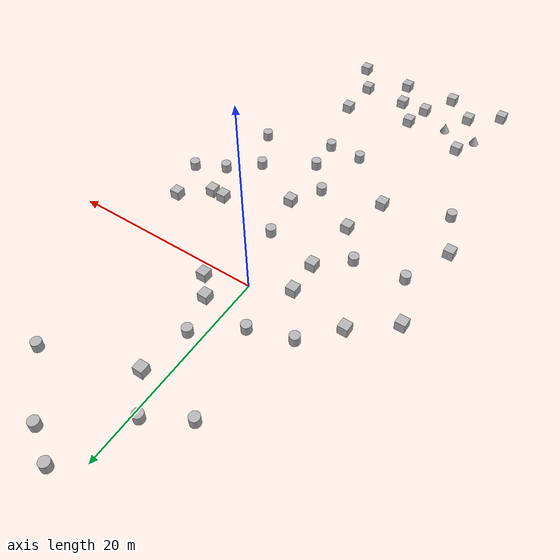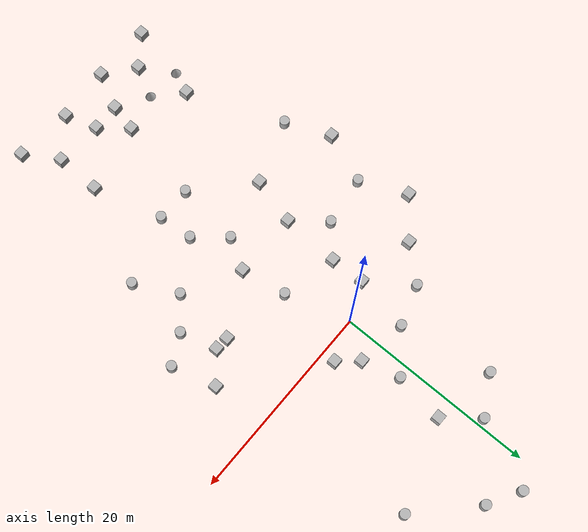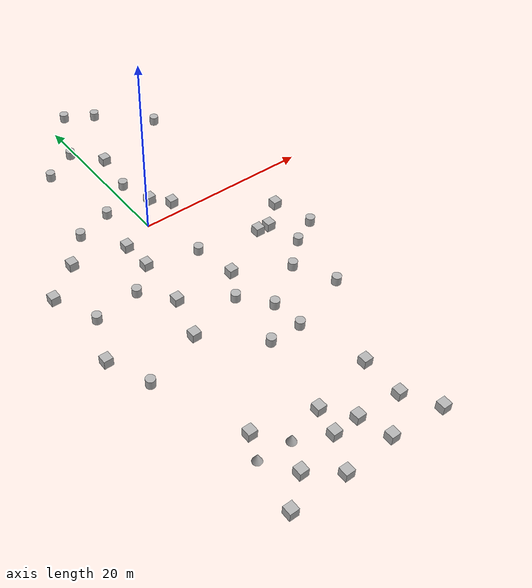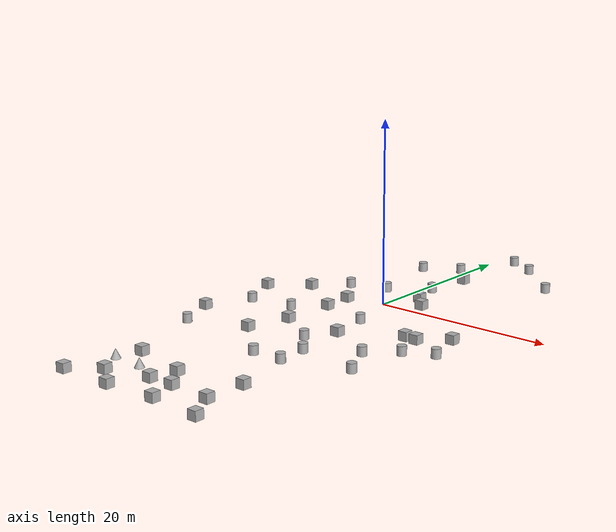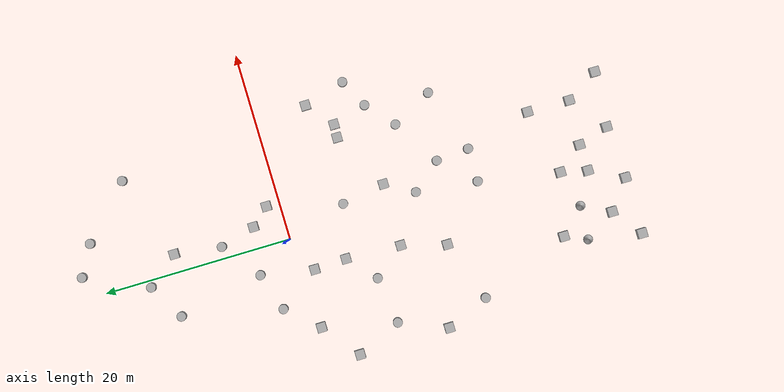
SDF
<sdf version="1.10">
 <world name="warehouse">
  <physics type="ode">
   <max_step_size>0.0030000000000000001</max_step_size>
   <real_time_factor>1</real_time_factor>
   <real_time_update_rate>1000</real_time_update_rate>
   <gravity>0 0 -9.8</gravity>
  </physics>
  <plugin name="gz::sim::systems::Physics" filename="libgz-sim-physics-system.so"/>
  <plugin name="gz::sim::systems::UserCommands" filename="libgz-sim-user-commands-system.so"/>
  <plugin name="gz::sim::systems::SceneBroadcaster" filename="libgz-sim-scene-broadcaster-system.so"/>
  <scene>
   <ambient>1 1 1 1</ambient>
   <background>0.300000012 0.699999988 0.899999976 1</background>
   <shadows>false</shadows>
   <grid>false</grid>
  </scene>
  <spherical_coordinates>
   <surface_model>EARTH_WGS84</surface_model>
   <world_frame_orientation>ENU</world_frame_orientation>
   <latitude_deg>-22.986687</latitude_deg>
   <longitude_deg>-43.202500999999998</longitude_deg>
   <elevation>0</elevation>
   <heading_deg>0</heading_deg>
  </spherical_coordinates>
  <gravity>0 0 -9.8000000000000007</gravity>
  <magnetic_field>5.5644999999999998e-06 2.2875799999999999e-05 -4.2388400000000002e-05</magnetic_field>
  <atmosphere type="adiabatic"/>
  <model name="ground_plane">
   <static>true</static>
   <link name="link">
    <collision name="collision">
     <geometry><plane><normal>0 0 1</normal><size>1 1</size></plane></geometry>
    </collision>
    <inertial>
     <mass>1</mass>
     <inertia><ixx>1</ixx><ixy>0</ixy><ixz>0</ixz><iyy>1</iyy><iyz>0</iyz><izz>1</izz></inertia>
    </inertial>
   </link>
  </model>
  <model name="box">
   <pose>2.3430943580382575 3.2816854598629068 0.49999999911798237 1.5363336224756932e-20 -1.2574342005325274e-20 1.3847431932731033e-21</pose>
   <link name="box_link">
    <inertial>
     <inertia><ixx>0.16666</ixx><ixy>0</ixy><ixz>0</ixz><iyy>0.16666</iyy><iyz>0</iyz><izz>0.16666</izz></inertia>
     <mass>1</mass>
    </inertial>
    <collision name="box_collision"><geometry><box><size>1 1 1</size></box></geometry></collision>
    <visual name="box_visual">
     <geometry><box><size>1 1 1</size></box></geometry>
     <material>
      <ambient>0.300000012 0.300000012 0.300000012 1</ambient>
      <diffuse>0.699999988 0.699999988 0.699999988 1</diffuse>
      <specular>1 1 1 1</specular>
     </material>
    </visual>
   </link>
   <static>false</static>
  </model>
  <model name="box_0">
   <pose>4.0118598937988281 1.3872389793395996 0.49999999911798237 3.3652359670472887e-20 -4.8138225374557266e-20 3.8050730697114273e-21</pose>
   <link name="box_link">
    <inertial>
     <inertia><ixx>0.16666</ixx><ixy>0</ixy><ixz>0</ixz><iyy>0.16666</iyy><iyz>0</iyz><izz>0.16666</izz></inertia>
     <mass>1</mass>
    </inertial>
    <collision name="box_collision"><geometry><box><size>1 1 1</size></box></geometry></collision>
    <visual name="box_visual">
     <geometry><box><size>1 1 1</size></box></geometry>
     <material>
      <ambient>0.300000012 0.300000012 0.300000012 1</ambient>
      <diffuse>0.699999988 0.699999988 0.699999988 1</diffuse>
      <specular>1 1 1 1</specular>
     </material>
    </visual>
   </link>
   <static>false</static>
  </model>
  <model name="box_1">
   <pose>-3.711899995803833 -1.5780833959579468 0.49999999911798237 1.8104511403663283e-20 -5.737647386745368e-20 -3.3325984697457734e-21</pose>
   <link name="box_link">
    <inertial>
     <inertia><ixx>0.16666</ixx><ixy>0</ixy><ixz>0</ixz><iyy>0.16666</iyy><iyz>0</iyz><izz>0.16666</izz></inertia>
     <mass>1</mass>
    </inertial>
    <collision name="box_collision"><geometry><box><size>1 1 1</size></box></geometry></collision>
    <visual name="box_visual">
     <geometry><box><size>1 1 1</size></box></geometry>
     <material>
      <ambient>0.300000012 0.300000012 0.300000012 1</ambient>
      <diffuse>0.699999988 0.699999988 0.699999988 1</diffuse>
      <specular>1 1 1 1</specular>
     </material>
    </visual>
   </link>
   <static>false</static>
  </model>
  <model name="cylinder">
   <pose>-2.6779431692146689 4.0088310957134858 0.49999957929137095 4.639213992121355e-18 6.6681793581926108e-18 -7.9754132692826942e-20</pose>
   <link name="cylinder_link">
    <inertial>
     <inertia>
      <ixx>0.14580000000000001</ixx>
      <ixy>0</ixy>
      <ixz>0</ixz>
      <iyy>0.14580000000000001</iyy>
      <iyz>0</iyz>
      <izz>0.125</izz>
     </inertia>
     <mass>1</mass>
    </inertial>
    <collision name="cylinder_collision">
     <geometry><cylinder><radius>0.5</radius><length>1</length></cylinder></geometry>
    </collision>
    <visual name="cylinder_visual">
     <geometry><cylinder><radius>0.5</radius><length>1</length></cylinder></geometry>
     <material>
      <ambient>0.300000012 0.300000012 0.300000012 1</ambient>
      <diffuse>0.699999988 0.699999988 0.699999988 1</diffuse>
      <specular>1 1 1 1</specular>
     </material>
    </visual>
   </link>
   <static>false</static>
  </model>
  <model name="cylinder_0">
   <pose>1.2923844386365673 7.0169729133462386 0.49999957929137095 2.3095690910754773e-18 5.9629538649381313e-18 3.0287092119770442e-19</pose>
   <link name="cylinder_link">
    <inertial>
     <inertia>
      <ixx>0.14580000000000001</ixx>
      <ixy>0</ixy>
      <ixz>0</ixz>
      <iyy>0.14580000000000001</iyy>
      <iyz>0</iyz>
      <izz>0.125</izz>
     </inertia>
     <mass>1</mass>
    </inertial>
    <collision name="cylinder_collision">
     <geometry><cylinder><radius>0.5</radius><length>1</length></cylinder></geometry>
    </collision>
    <visual name="cylinder_visual">
     <geometry><cylinder><radius>0.5</radius><length>1</length></cylinder></geometry>
     <material>
      <ambient>0.300000012 0.300000012 0.300000012 1</ambient>
      <diffuse>0.699999988 0.699999988 0.699999988 1</diffuse>
      <specular>1 1 1 1</specular>
     </material>
    </visual>
   </link>
   <static>false</static>
  </model>
  <model name="box_3">
   <pose>-3.5693172796663548 -5.007057410873454 0.49999999911798237 1.5363336224756932e-20 -1.2574342005325274e-20 1.3847431932731033e-21</pose>
   <link name="box_link">
    <inertial>
     <inertia><ixx>0.16666</ixx><ixy>0</ixy><ixz>0</ixz><iyy>0.16666</iyy><iyz>0</iyz><izz>0.16666</izz></inertia>
     <mass>1</mass>
    </inertial>
    <collision name="box_collision"><geometry><box><size>1 1 1</size></box></geometry></collision>
    <visual name="box_visual">
     <geometry><box><size>1 1 1</size></box></geometry>
     <material>
      <ambient>0.300000012 0.300000012 0.300000012 1</ambient>
      <diffuse>0.699999988 0.699999988 0.699999988 1</diffuse>
      <specular>1 1 1 1</specular>
     </material>
    </visual>
   </link>
   <static>false</static>
  </model>
  <model name="box_2">
   <pose>12.922972679138184 -5.4979400634765625 0.49999999911798237 3.2992390848228071e-20 -4.8880562375257448e-20 4.1343814366759123e-21</pose>
   <link name="box_link">
    <inertial>
     <inertia><ixx>0.16666</ixx><ixy>0</ixy><ixz>0</ixz><iyy>0.16666</iyy><iyz>0</iyz><izz>0.16666</izz></inertia>
     <mass>1</mass>
    </inertial>
    <collision name="box_collision"><geometry><box><size>1 1 1</size></box></geometry></collision>
    <visual name="box_visual">
     <geometry><box><size>1 1 1</size></box></geometry>
     <material>
      <ambient>0.300000012 0.300000012 0.300000012 1</ambient>
      <diffuse>0.699999988 0.699999988 0.699999988 1</diffuse>
      <specular>1 1 1 1</specular>
     </material>
    </visual>
   </link>
   <static>false</static>
  </model>
  <model name="box_4">
   <pose>10.184483733446108 -7.7893425360040336 0.49999999911798237 1.5363336224756932e-20 -1.2574342005325274e-20 1.3847431932731033e-21</pose>
   <link name="box_link">
    <inertial>
     <inertia><ixx>0.16666</ixx><ixy>0</ixy><ixz>0</ixz><iyy>0.16666</iyy><iyz>0</iyz><izz>0.16666</izz></inertia>
     <mass>1</mass>
    </inertial>
    <collision name="box_collision"><geometry><box><size>1 1 1</size></box></geometry></collision>
    <visual name="box_visual">
     <geometry><box><size>1 1 1</size></box></geometry>
     <material>
      <ambient>0.300000012 0.300000012 0.300000012 1</ambient>
      <diffuse>0.699999988 0.699999988 0.699999988 1</diffuse>
      <specular>1 1 1 1</specular>
     </material>
    </visual>
   </link>
   <static>false</static>
  </model>
  <model name="box_5">
   <pose>8.7903529321629463 -7.7065495120498611 0.49999999911798237 1.5363336224756932e-20 -1.2574342005325274e-20 1.3847431932731033e-21</pose>
   <link name="box_link">
    <inertial>
     <inertia><ixx>0.16666</ixx><ixy>0</ixy><ixz>0</ixz><iyy>0.16666</iyy><iyz>0</iyz><izz>0.16666</izz></inertia>
     <mass>1</mass>
    </inertial>
    <collision name="box_collision"><geometry><box><size>1 1 1</size></box></geometry></collision>
    <visual name="box_visual">
     <geometry><box><size>1 1 1</size></box></geometry>
     <material>
      <ambient>0.300000012 0.300000012 0.300000012 1</ambient>
      <diffuse>0.699999988 0.699999988 0.699999988 1</diffuse>
      <specular>1 1 1 1</specular>
     </material>
    </visual>
   </link>
   <static>false</static>
  </model>
  <model name="cylinder_1">
   <pose>11.203709744321237 -11.397504562263105 0.49999957929137095 1.0636605664631307e-17 -6.1423362375997655e-19 -5.5555853916895788e-19</pose>
   <link name="cylinder_link">
    <inertial>
     <inertia>
      <ixx>0.14580000000000001</ixx>
      <ixy>0</ixy>
      <ixz>0</ixz>
      <iyy>0.14580000000000001</iyy>
      <iyz>0</iyz>
      <izz>0.125</izz>
     </inertia>
     <mass>1</mass>
    </inertial>
    <collision name="cylinder_collision">
     <geometry><cylinder><radius>0.5</radius><length>1</length></cylinder></geometry>
    </collision>
    <visual name="cylinder_visual">
     <geometry><cylinder><radius>0.5</radius><length>1</length></cylinder></geometry>
     <material>
      <ambient>0.300000012 0.300000012 0.300000012 1</ambient>
      <diffuse>0.699999988 0.699999988 0.699999988 1</diffuse>
      <specular>1 1 1 1</specular>
     </material>
    </visual>
   </link>
   <static>false</static>
  </model>
  <model name="cylinder_2">
   <pose>8.3674726486206055 -13.91569995880127 0.49999909000104409 1.0031397206352473e-17 -9.2080600127782299e-18 -3.2950133555069379e-19</pose>
   <link name="cylinder_link">
    <inertial>
     <inertia>
      <ixx>0.14580000000000001</ixx>
      <ixy>0</ixy>
      <ixz>0</ixz>
      <iyy>0.14580000000000001</iyy>
      <iyz>0</iyz>
      <izz>0.125</izz>
     </inertia>
     <mass>1</mass>
    </inertial>
    <collision name="cylinder_collision">
     <geometry><cylinder><radius>0.5</radius><length>1</length></cylinder></geometry>
    </collision>
    <visual name="cylinder_visual">
     <geometry><cylinder><radius>0.5</radius><length>1</length></cylinder></geometry>
     <material>
      <ambient>0.300000012 0.300000012 0.300000012 1</ambient>
      <diffuse>0.699999988 0.699999988 0.699999988 1</diffuse>
      <specular>1 1 1 1</specular>
     </material>
    </visual>
   </link>
   <static>false</static>
  </model>
  <model name="cylinder_3">
   <pose>14.162644390188577 -9.8741179710396167 0.49999957929137095 8.5031142334726339e-18 -8.435511252606414e-18 3.5219309653246312e-20</pose>
   <link name="cylinder_link">
    <inertial>
     <inertia>
      <ixx>0.14580000000000001</ixx>
      <ixy>0</ixy>
      <ixz>0</ixz>
      <iyy>0.14580000000000001</iyy>
      <iyz>0</iyz>
      <izz>0.125</izz>
     </inertia>
     <mass>1</mass>
    </inertial>
    <collision name="cylinder_collision">
     <geometry><cylinder><radius>0.5</radius><length>1</length></cylinder></geometry>
    </collision>
    <visual name="cylinder_visual">
     <geometry><cylinder><radius>0.5</radius><length>1</length></cylinder></geometry>
     <material>
      <ambient>0.300000012 0.300000012 0.300000012 1</ambient>
      <diffuse>0.699999988 0.699999988 0.699999988 1</diffuse>
      <specular>1 1 1 1</specular>
     </material>
    </visual>
   </link>
   <static>false</static>
  </model>
  <model name="cylinder_4">
   <pose>10.556797027587891 -18.117399215698242 0.49999957925398764 2.8299332966698225e-18 8.3617305618024624e-19 -4.0140029812810816e-19</pose>
   <link name="cylinder_link">
    <inertial>
     <inertia>
      <ixx>0.14580000000000001</ixx>
      <ixy>0</ixy>
      <ixz>0</ixz>
      <iyy>0.14580000000000001</iyy>
      <iyz>0</iyz>
      <izz>0.125</izz>
     </inertia>
     <mass>1</mass>
    </inertial>
    <collision name="cylinder_collision">
     <geometry><cylinder><radius>0.5</radius><length>1</length></cylinder></geometry>
    </collision>
    <visual name="cylinder_visual">
     <geometry><cylinder><radius>0.5</radius><length>1</length></cylinder></geometry>
     <material>
      <ambient>0.300000012 0.300000012 0.300000012 1</ambient>
      <diffuse>0.699999988 0.699999988 0.699999988 1</diffuse>
      <specular>1 1 1 1</specular>
     </material>
    </visual>
   </link>
   <static>false</static>
  </model>
  <model name="cylinder_5">
   <pose>3.7873936505521701 -20.44728236863147 0.49999957929137095 6.5197012924053597e-19 -1.2833197655771773e-18 -1.1950079849506876e-19</pose>
   <link name="cylinder_link">
    <inertial>
     <inertia>
      <ixx>0.14580000000000001</ixx>
      <ixy>0</ixy>
      <ixz>0</ixz>
      <iyy>0.14580000000000001</iyy>
      <iyz>0</iyz>
      <izz>0.125</izz>
     </inertia>
     <mass>1</mass>
    </inertial>
    <collision name="cylinder_collision">
     <geometry><cylinder><radius>0.5</radius><length>1</length></cylinder></geometry>
    </collision>
    <visual name="cylinder_visual">
     <geometry><cylinder><radius>0.5</radius><length>1</length></cylinder></geometry>
     <material>
      <ambient>0.300000012 0.300000012 0.300000012 1</ambient>
      <diffuse>0.699999988 0.699999988 0.699999988 1</diffuse>
      <specular>1 1 1 1</specular>
     </material>
    </visual>
   </link>
   <static>false</static>
  </model>
  <model name="cylinder_6">
   <pose>0.25169467926025391 -20.43950080871582 0.49999957934481337 3.7721528596649834e-18 -9.0600724615924961e-19 -4.4572341338900481e-20</pose>
   <link name="cylinder_link">
    <inertial>
     <inertia>
      <ixx>0.14580000000000001</ixx>
      <ixy>0</ixy>
      <ixz>0</ixz>
      <iyy>0.14580000000000001</iyy>
      <iyz>0</iyz>
      <izz>0.125</izz>
     </inertia>
     <mass>1</mass>
    </inertial>
    <collision name="cylinder_collision">
     <geometry><cylinder><radius>0.5</radius><length>1</length></cylinder></geometry>
    </collision>
    <visual name="cylinder_visual">
     <geometry><cylinder><radius>0.5</radius><length>1</length></cylinder></geometry>
     <material>
      <ambient>0.300000012 0.300000012 0.300000012 1</ambient>
      <diffuse>0.699999988 0.699999988 0.699999988 1</diffuse>
      <specular>1 1 1 1</specular>
     </material>
    </visual>
   </link>
   <static>false</static>
  </model>
  <model name="cylinder_7">
   <pose>3.5238813744986919 -16.967492644607791 0.49999957929137095 2.5779694792096685e-19 -1.0383957496848795e-18 -3.5980866167722519e-19</pose>
   <link name="cylinder_link">
    <inertial>
     <inertia>
      <ixx>0.14580000000000001</ixx>
      <ixy>0</ixy>
      <ixz>0</ixz>
      <iyy>0.14580000000000001</iyy>
      <iyz>0</iyz>
      <izz>0.125</izz>
     </inertia>
     <mass>1</mass>
    </inertial>
    <collision name="cylinder_collision">
     <geometry><cylinder><radius>0.5</radius><length>1</length></cylinder></geometry>
    </collision>
    <visual name="cylinder_visual">
     <geometry><cylinder><radius>0.5</radius><length>1</length></cylinder></geometry>
     <material>
      <ambient>0.300000012 0.300000012 0.300000012 1</ambient>
      <diffuse>0.699999988 0.699999988 0.699999988 1</diffuse>
      <specular>1 1 1 1</specular>
     </material>
    </visual>
   </link>
   <static>false</static>
  </model>
  <model name="cylinder_8">
   <pose>1.0048054686356214 -13.962910955742062 0.49999957929137095 1.0401566352469103e-18 -5.7044833694820492e-20 1.1053135198276469e-19</pose>
   <link name="cylinder_link">
    <inertial>
     <inertia>
      <ixx>0.14580000000000001</ixx>
      <ixy>0</ixy>
      <ixz>0</ixz>
      <iyy>0.14580000000000001</iyy>
      <iyz>0</iyz>
      <izz>0.125</izz>
     </inertia>
     <mass>1</mass>
    </inertial>
    <collision name="cylinder_collision">
     <geometry><cylinder><radius>0.5</radius><length>1</length></cylinder></geometry>
    </collision>
    <visual name="cylinder_visual">
     <geometry><cylinder><radius>0.5</radius><length>1</length></cylinder></geometry>
     <material>
      <ambient>0.300000012 0.300000012 0.300000012 1</ambient>
      <diffuse>0.699999988 0.699999988 0.699999988 1</diffuse>
      <specular>1 1 1 1</specular>
     </material>
    </visual>
   </link>
   <static>false</static>
  </model>
  <model name="box_6">
   <pose>2.7755762304589147 -10.949361368845773 0.49999999911798237 1.5363336224756932e-20 -1.2574342005325274e-20 1.3847431932731033e-21</pose>
   <link name="box_link">
    <inertial>
     <inertia><ixx>0.16666</ixx><ixy>0</ixy><ixz>0</ixz><iyy>0.16666</iyy><iyz>0</iyz><izz>0.16666</izz></inertia>
     <mass>1</mass>
    </inertial>
    <collision name="box_collision"><geometry><box><size>1 1 1</size></box></geometry></collision>
    <visual name="box_visual">
     <geometry><box><size>1 1 1</size></box></geometry>
     <material>
      <ambient>0.300000012 0.300000012 0.300000012 1</ambient>
      <diffuse>0.699999988 0.699999988 0.699999988 1</diffuse>
      <specular>1 1 1 1</specular>
     </material>
    </visual>
   </link>
   <static>false</static>
  </model>
  <model name="cylinder_9">
   <pose>1.9937499761581421 -6.3621978759765625 0.49999957934481343 -4.7244585679345603e-18 -7.8128889422301954e-18 -4.3195410221290847e-19</pose>
   <link name="cylinder_link">
    <inertial>
     <inertia>
      <ixx>0.14580000000000001</ixx>
      <ixy>0</ixy>
      <ixz>0</ixz>
      <iyy>0.14580000000000001</iyy>
      <iyz>0</iyz>
      <izz>0.125</izz>
     </inertia>
     <mass>1</mass>
    </inertial>
    <collision name="cylinder_collision">
     <geometry><cylinder><radius>0.5</radius><length>1</length></cylinder></geometry>
    </collision>
    <visual name="cylinder_visual">
     <geometry><cylinder><radius>0.5</radius><length>1</length></cylinder></geometry>
     <material>
      <ambient>0.300000012 0.300000012 0.300000012 1</ambient>
      <diffuse>0.699999988 0.699999988 0.699999988 1</diffuse>
      <specular>1 1 1 1</specular>
     </material>
    </visual>
   </link>
   <static>false</static>
  </model>
  <model name="cylinder_10">
   <pose>-6.4471833049463694 -7.6030230901531031 0.49999957929137095 2.1283540053473405e-19 -3.3198964776249952e-18 2.2479422151615722e-20</pose>
   <link name="cylinder_link">
    <inertial>
     <inertia>
      <ixx>0.14580000000000001</ixx>
      <ixy>0</ixy>
      <ixz>0</ixz>
      <iyy>0.14580000000000001</iyy>
      <iyz>0</iyz>
      <izz>0.125</izz>
     </inertia>
     <mass>1</mass>
    </inertial>
    <collision name="cylinder_collision">
     <geometry><cylinder><radius>0.5</radius><length>1</length></cylinder></geometry>
    </collision>
    <visual name="cylinder_visual">
     <geometry><cylinder><radius>0.5</radius><length>1</length></cylinder></geometry>
     <material>
      <ambient>0.300000012 0.300000012 0.300000012 1</ambient>
      <diffuse>0.699999988 0.699999988 0.699999988 1</diffuse>
      <specular>1 1 1 1</specular>
     </material>
    </visual>
   </link>
   <static>false</static>
  </model>
  <model name="box_7">
   <pose>-3.8570670755560328 -10.869147665733788 0.49999999911798237 -1.0980224856337924e-20 2.1748165303813592e-22 1.7251284132199079e-22</pose>
   <link name="box_link">
    <inertial>
     <inertia><ixx>0.16666</ixx><ixy>0</ixy><ixz>0</ixz><iyy>0.16666</iyy><iyz>0</iyz><izz>0.16666</izz></inertia>
     <mass>1</mass>
    </inertial>
    <collision name="box_collision"><geometry><box><size>1 1 1</size></box></geometry></collision>
    <visual name="box_visual">
     <geometry><box><size>1 1 1</size></box></geometry>
     <material>
      <ambient>0.300000012 0.300000012 0.300000012 1</ambient>
      <diffuse>0.699999988 0.699999988 0.699999988 1</diffuse>
      <specular>1 1 1 1</specular>
     </material>
    </visual>
   </link>
   <static>false</static>
  </model>
  <model name="box_8">
   <pose>-5.1481046314067225 -15.552220772618924 0.49999999911798237 1.5363336224756932e-20 -1.2574342005325274e-20 1.3847431932731033e-21</pose>
   <link name="box_link">
    <inertial>
     <inertia><ixx>0.16666</ixx><ixy>0</ixy><ixz>0</ixz><iyy>0.16666</iyy><iyz>0</iyz><izz>0.16666</izz></inertia>
     <mass>1</mass>
    </inertial>
    <collision name="box_collision"><geometry><box><size>1 1 1</size></box></geometry></collision>
    <visual name="box_visual">
     <geometry><box><size>1 1 1</size></box></geometry>
     <material>
      <ambient>0.300000012 0.300000012 0.300000012 1</ambient>
      <diffuse>0.699999988 0.699999988 0.699999988 1</diffuse>
      <specular>1 1 1 1</specular>
     </material>
    </visual>
   </link>
   <static>false</static>
  </model>
  <model name="cylinder_11">
   <pose>-6.739698151614955 2.7000016948423875 0.49999957929137095 7.9317700129655026e-18 5.721621312167527e-20 -5.3379271163265455e-20</pose>
   <link name="cylinder_link">
    <inertial>
     <inertia>
      <ixx>0.14580000000000001</ixx>
      <ixy>0</ixy>
      <ixz>0</ixz>
      <iyy>0.14580000000000001</iyy>
      <iyz>0</iyz>
      <izz>0.125</izz>
     </inertia>
     <mass>1</mass>
    </inertial>
    <collision name="cylinder_collision">
     <geometry><cylinder><radius>0.5</radius><length>1</length></cylinder></geometry>
    </collision>
    <visual name="cylinder_visual">
     <geometry><cylinder><radius>0.5</radius><length>1</length></cylinder></geometry>
     <material>
      <ambient>0.300000012 0.300000012 0.300000012 1</ambient>
      <diffuse>0.699999988 0.699999988 0.699999988 1</diffuse>
      <specular>1 1 1 1</specular>
     </material>
    </visual>
   </link>
   <static>false</static>
  </model>
  <model name="box_9">
   <pose>-9.6907555252467041 -0.55260158296205475 0.49999999911798237 1.5363336224756932e-20 -1.2574342005325274e-20 1.3847431932731033e-21</pose>
   <link name="box_link">
    <inertial>
     <inertia><ixx>0.16666</ixx><ixy>0</ixy><ixz>0</ixz><iyy>0.16666</iyy><iyz>0</iyz><izz>0.16666</izz></inertia>
     <mass>1</mass>
    </inertial>
    <collision name="box_collision"><geometry><box><size>1 1 1</size></box></geometry></collision>
    <visual name="box_visual">
     <geometry><box><size>1 1 1</size></box></geometry>
     <material>
      <ambient>0.300000012 0.300000012 0.300000012 1</ambient>
      <diffuse>0.699999988 0.699999988 0.699999988 1</diffuse>
      <specular>1 1 1 1</specular>
     </material>
    </visual>
   </link>
   <static>false</static>
  </model>
  <model name="box_10">
   <pose>-13.54045561337292 -3.6078104528985389 0.49999999911798237 1.5363336224756932e-20 -1.2574342005325274e-20 1.3847431932731033e-21</pose>
   <link name="box_link">
    <inertial>
     <inertia><ixx>0.16666</ixx><ixy>0</ixy><ixz>0</ixz><iyy>0.16666</iyy><iyz>0</iyz><izz>0.16666</izz></inertia>
     <mass>1</mass>
    </inertial>
    <collision name="box_collision"><geometry><box><size>1 1 1</size></box></geometry></collision>
    <visual name="box_visual">
     <geometry><box><size>1 1 1</size></box></geometry>
     <material>
      <ambient>0.300000012 0.300000012 0.300000012 1</ambient>
      <diffuse>0.699999988 0.699999988 0.699999988 1</diffuse>
      <specular>1 1 1 1</specular>
     </material>
    </visual>
   </link>
   <static>false</static>
  </model>
  <model name="cylinder_12">
   <pose>-11.456757781017123 -8.2931624878447785 0.49999957929137095 7.9085133867854203e-18 -1.7842048193314204e-18 -1.3111832447756987e-19</pose>
   <link name="cylinder_link">
    <inertial>
     <inertia>
      <ixx>0.14580000000000001</ixx>
      <ixy>0</ixy>
      <ixz>0</ixz>
      <iyy>0.14580000000000001</iyy>
      <iyz>0</iyz>
      <izz>0.125</izz>
     </inertia>
     <mass>1</mass>
    </inertial>
    <collision name="cylinder_collision">
     <geometry><cylinder><radius>0.5</radius><length>1</length></cylinder></geometry>
    </collision>
    <visual name="cylinder_visual">
     <geometry><cylinder><radius>0.5</radius><length>1</length></cylinder></geometry>
     <material>
      <ambient>0.300000012 0.300000012 0.300000012 1</ambient>
      <diffuse>0.699999988 0.699999988 0.699999988 1</diffuse>
      <specular>1 1 1 1</specular>
     </material>
    </visual>
   </link>
   <static>false</static>
  </model>
  <model name="box_11">
   <pose>-13.513806367024433 -13.294190188615367 0.49999999911798237 1.5363336224756932e-20 -1.2574342005325274e-20 1.3847431932731033e-21</pose>
   <link name="box_link">
    <inertial>
     <inertia><ixx>0.16666</ixx><ixy>0</ixy><ixz>0</ixz><iyy>0.16666</iyy><iyz>0</iyz><izz>0.16666</izz></inertia>
     <mass>1</mass>
    </inertial>
    <collision name="box_collision"><geometry><box><size>1 1 1</size></box></geometry></collision>
    <visual name="box_visual">
     <geometry><box><size>1 1 1</size></box></geometry>
     <material>
      <ambient>0.300000012 0.300000012 0.300000012 1</ambient>
      <diffuse>0.699999988 0.699999988 0.699999988 1</diffuse>
      <specular>1 1 1 1</specular>
     </material>
    </visual>
   </link>
   <static>false</static>
  </model>
  <model name="cylinder_13">
   <pose>-11.613910638293154 -17.789755743618969 0.49999957929137095 5.9806606780660016e-18 -6.8363885637223461e-18 1.2031268374869904e-19</pose>
   <link name="cylinder_link">
    <inertial>
     <inertia>
      <ixx>0.14580000000000001</ixx>
      <ixy>0</ixy>
      <ixz>0</ixz>
      <iyy>0.14580000000000001</iyy>
      <iyz>0</iyz>
      <izz>0.125</izz>
     </inertia>
     <mass>1</mass>
    </inertial>
    <collision name="cylinder_collision">
     <geometry><cylinder><radius>0.5</radius><length>1</length></cylinder></geometry>
    </collision>
    <visual name="cylinder_visual">
     <geometry><cylinder><radius>0.5</radius><length>1</length></cylinder></geometry>
     <material>
      <ambient>0.300000012 0.300000012 0.300000012 1</ambient>
      <diffuse>0.699999988 0.699999988 0.699999988 1</diffuse>
      <specular>1 1 1 1</specular>
     </material>
    </visual>
   </link>
   <static>false</static>
  </model>
  <model name="cylinder_14">
   <pose>-4.4573593935435953 13.083063097821324 0.49999957929137095 4.0171563826564197e-18 2.7984471044865961e-19 -2.4554144045806898e-19</pose>
   <link name="cylinder_link">
    <inertial>
     <inertia>
      <ixx>0.14580000000000001</ixx>
      <ixy>0</ixy>
      <ixz>0</ixz>
      <iyy>0.14580000000000001</iyy>
      <iyz>0</iyz>
      <izz>0.125</izz>
     </inertia>
     <mass>1</mass>
    </inertial>
    <collision name="cylinder_collision">
     <geometry><cylinder><radius>0.5</radius><length>1</length></cylinder></geometry>
    </collision>
    <visual name="cylinder_visual">
     <geometry><cylinder><radius>0.5</radius><length>1</length></cylinder></geometry>
     <material>
      <ambient>0.300000012 0.300000012 0.300000012 1</ambient>
      <diffuse>0.699999988 0.699999988 0.699999988 1</diffuse>
      <specular>1 1 1 1</specular>
     </material>
    </visual>
   </link>
   <static>false</static>
  </model>
  <model name="cylinder_15">
   <pose>-0.66585390110383891 15.246648763871109 0.49999957929137095 -1.2064282626259962e-18 -6.4438073083142753e-19 -3.827923480347417e-19</pose>
   <link name="cylinder_link">
    <inertial>
     <inertia>
      <ixx>0.14580000000000001</ixx>
      <ixy>0</ixy>
      <ixz>0</ixz>
      <iyy>0.14580000000000001</iyy>
      <iyz>0</iyz>
      <izz>0.125</izz>
     </inertia>
     <mass>1</mass>
    </inertial>
    <collision name="cylinder_collision">
     <geometry><cylinder><radius>0.5</radius><length>1</length></cylinder></geometry>
    </collision>
    <visual name="cylinder_visual">
     <geometry><cylinder><radius>0.5</radius><length>1</length></cylinder></geometry>
     <material>
      <ambient>0.300000012 0.300000012 0.300000012 1</ambient>
      <diffuse>0.699999988 0.699999988 0.699999988 1</diffuse>
      <specular>1 1 1 1</specular>
     </material>
    </visual>
   </link>
   <static>false</static>
  </model>
  <model name="box_12">
   <pose>1.9730249066505507 11.997904178662202 0.49999999911798237 1.5363336224756932e-20 -1.2574342005325274e-20 1.3847431932731033e-21</pose>
   <link name="box_link">
    <inertial>
     <inertia><ixx>0.16666</ixx><ixy>0</ixy><ixz>0</ixz><iyy>0.16666</iyy><iyz>0</iyz><izz>0.16666</izz></inertia>
     <mass>1</mass>
    </inertial>
    <collision name="box_collision"><geometry><box><size>1 1 1</size></box></geometry></collision>
    <visual name="box_visual">
     <geometry><box><size>1 1 1</size></box></geometry>
     <material>
      <ambient>0.300000012 0.300000012 0.300000012 1</ambient>
      <diffuse>0.699999988 0.699999988 0.699999988 1</diffuse>
      <specular>1 1 1 1</specular>
     </material>
    </visual>
   </link>
   <static>false</static>
  </model>
  <model name="cylinder_16">
   <pose>10.81443852645944 15.015866654789528 0.49999957929137095 -2.2761825979789857e-18 -7.6962848694094659e-18 1.921799675715097e-19</pose>
   <link name="cylinder_link">
    <inertial>
     <inertia>
      <ixx>0.14580000000000001</ixx>
      <ixy>0</ixy>
      <ixz>0</ixz>
      <iyy>0.14580000000000001</iyy>
      <iyz>0</iyz>
      <izz>0.125</izz>
     </inertia>
     <mass>1</mass>
    </inertial>
    <collision name="cylinder_collision">
     <geometry><cylinder><radius>0.5</radius><length>1</length></cylinder></geometry>
    </collision>
    <visual name="cylinder_visual">
     <geometry><cylinder><radius>0.5</radius><length>1</length></cylinder></geometry>
     <material>
      <ambient>0.300000012 0.300000012 0.300000012 1</ambient>
      <diffuse>0.699999988 0.699999988 0.699999988 1</diffuse>
      <specular>1 1 1 1</specular>
     </material>
    </visual>
   </link>
   <static>false</static>
  </model>
  <model name="cylinder_17">
   <pose>2.3525381142037434 21.864650819664284 0.49999957929137095 2.8023108311434132e-18 -2.9878044815851096e-18 -7.9882407727126324e-20</pose>
   <link name="cylinder_link">
    <inertial>
     <inertia>
      <ixx>0.14580000000000001</ixx>
      <ixy>0</ixy>
      <ixz>0</ixz>
      <iyy>0.14580000000000001</iyy>
      <iyz>0</iyz>
      <izz>0.125</izz>
     </inertia>
     <mass>1</mass>
    </inertial>
    <collision name="cylinder_collision">
     <geometry><cylinder><radius>0.5</radius><length>1</length></cylinder></geometry>
    </collision>
    <visual name="cylinder_visual">
     <geometry><cylinder><radius>0.5</radius><length>1</length></cylinder></geometry>
     <material>
      <ambient>0.300000012 0.300000012 0.300000012 1</ambient>
      <diffuse>0.699999988 0.699999988 0.699999988 1</diffuse>
      <specular>1 1 1 1</specular>
     </material>
    </visual>
   </link>
   <static>false</static>
  </model>
  <model name="cylinder_18">
   <pose>5.5024626350600441 20.060745169925163 0.49999957929137095 -2.8395764367497688e-18 2.8437578749108246e-18 -1.2080007351147293e-19</pose>
   <link name="cylinder_link">
    <inertial>
     <inertia>
      <ixx>0.14580000000000001</ixx>
      <ixy>0</ixy>
      <ixz>0</ixz>
      <iyy>0.14580000000000001</iyy>
      <iyz>0</iyz>
      <izz>0.125</izz>
     </inertia>
     <mass>1</mass>
    </inertial>
    <collision name="cylinder_collision">
     <geometry><cylinder><radius>0.5</radius><length>1</length></cylinder></geometry>
    </collision>
    <visual name="cylinder_visual">
     <geometry><cylinder><radius>0.5</radius><length>1</length></cylinder></geometry>
     <material>
      <ambient>0.300000012 0.300000012 0.300000012 1</ambient>
      <diffuse>0.699999988 0.699999988 0.699999988 1</diffuse>
      <specular>1 1 1 1</specular>
     </material>
    </visual>
   </link>
   <static>false</static>
  </model>
  <model name="cone">
   <pose>-8.856959566864381 -29.815003785585194 0.49999999939670808 4.7289568180715475e-16 -6.9419556930292995e-09 -7.7552055977926626e-22</pose>
   <link name="cone_link">
    <inertial>
     <inertia>
      <ixx>0.074999999999999997</ixx>
      <ixy>0</ixy>
      <ixz>0</ixz>
      <iyy>0.074999999999999997</iyy>
      <iyz>0</iyz>
      <izz>0.074999999999999997</izz>
     </inertia>
     <mass>1</mass>
    </inertial>
    <collision name="cone_collision">
     <geometry><cone><radius>0.5</radius><length>1</length></cone></geometry>
    </collision>
    <visual name="cone_visual">
     <geometry><cone><radius>0.5</radius><length>1</length></cone></geometry>
     <material>
      <ambient>0.300000012 0.300000012 0.300000012 1</ambient>
      <diffuse>0.699999988 0.699999988 0.699999988 1</diffuse>
      <specular>1 1 1 1</specular>
     </material>
    </visual>
   </link>
   <static>false</static>
  </model>
  <model name="cone_0">
   <pose>-5.266229488909393 -30.042032110188188 0.49999999939670808 4.7291392089557467e-16 -6.9419556933527263e-09 2.1959034082109056e-21</pose>
   <link name="cone_link">
    <inertial>
     <inertia>
      <ixx>0.074999999999999997</ixx>
      <ixy>0</ixy>
      <ixz>0</ixz>
      <iyy>0.074999999999999997</iyy>
      <iyz>0</iyz>
      <izz>0.074999999999999997</izz>
     </inertia>
     <mass>1</mass>
    </inertial>
    <collision name="cone_collision">
     <geometry><cone><radius>0.5</radius><length>1</length></cone></geometry>
    </collision>
    <visual name="cone_visual">
     <geometry><cone><radius>0.5</radius><length>1</length></cone></geometry>
     <material>
      <ambient>0.300000012 0.300000012 0.300000012 1</ambient>
      <diffuse>0.699999988 0.699999988 0.699999988 1</diffuse>
      <specular>1 1 1 1</specular>
     </material>
    </visual>
   </link>
   <static>false</static>
  </model>
  <model name="box_13">
   <pose>-1.9350299835205078 -31.756099700927734 0.49999999911798237 -3.1631782544314869e-21 1.3372085216368342e-20 1.2249772193994394e-21</pose>
   <link name="box_link">
    <inertial>
     <inertia><ixx>0.16666</ixx><ixy>0</ixy><ixz>0</ixz><iyy>0.16666</iyy><iyz>0</iyz><izz>0.16666</izz></inertia>
     <mass>1</mass>
    </inertial>
    <collision name="box_collision"><geometry><box><size>1 1 1</size></box></geometry></collision>
    <visual name="box_visual">
     <geometry><box><size>1 1 1</size></box></geometry>
     <material>
      <ambient>0.300000012 0.300000012 0.300000012 1</ambient>
      <diffuse>0.699999988 0.699999988 0.699999988 1</diffuse>
      <specular>1 1 1 1</specular>
     </material>
    </visual>
   </link>
   <static>false</static>
  </model>
  <model name="box_13_1">
   <pose>0.88031133611853885 -31.690382283006169 0.49999999911798237 -1.6581065191409589e-22 7.1461172919364365e-22 -2.0351093472491801e-21</pose>
   <link name="box_link">
    <inertial>
     <inertia><ixx>0.16666</ixx><ixy>0</ixy><ixz>0</ixz><iyy>0.16666</iyy><iyz>0</iyz><izz>0.16666</izz></inertia>
     <mass>1</mass>
    </inertial>
    <collision name="box_collision"><geometry><box><size>1 1 1</size></box></geometry></collision>
    <visual name="box_visual">
     <geometry><box><size>1 1 1</size></box></geometry>
     <material>
      <ambient>0.300000012 0.300000012 0.300000012 1</ambient>
      <diffuse>0.699999988 0.699999988 0.699999988 1</diffuse>
      <specular>1 1 1 1</specular>
     </material>
    </visual>
   </link>
   <static>false</static>
  </model>
  <model name="box_13_2">
   <pose>1.870583752170117 -34.915991420429606 0.49999999911798237 -7.3559150091563619e-21 -1.9513643597994602e-21 -1.1975529658612574e-21</pose>
   <link name="box_link">
    <inertial>
     <inertia><ixx>0.16666</ixx><ixy>0</ixy><ixz>0</ixz><iyy>0.16666</iyy><iyz>0</iyz><izz>0.16666</izz></inertia>
     <mass>1</mass>
    </inertial>
    <collision name="box_collision"><geometry><box><size>1 1 1</size></box></geometry></collision>
    <visual name="box_visual">
     <geometry><box><size>1 1 1</size></box></geometry>
     <material>
      <ambient>0.300000012 0.300000012 0.300000012 1</ambient>
      <diffuse>0.699999988 0.699999988 0.699999988 1</diffuse>
      <specular>1 1 1 1</specular>
     </material>
    </visual>
   </link>
   <static>false</static>
  </model>
  <model name="box_13_3">
   <pose>-3.7483022719777148 -35.305870854751547 0.49999999911798237 -1.7278716035434344e-20 5.0385699129407965e-21 1.9473605852369452e-21</pose>
   <link name="box_link">
    <inertial>
     <inertia><ixx>0.16666</ixx><ixy>0</ixy><ixz>0</ixz><iyy>0.16666</iyy><iyz>0</iyz><izz>0.16666</izz></inertia>
     <mass>1</mass>
    </inertial>
    <collision name="box_collision"><geometry><box><size>1 1 1</size></box></geometry></collision>
    <visual name="box_visual">
     <geometry><box><size>1 1 1</size></box></geometry>
     <material>
      <ambient>0.300000012 0.300000012 0.300000012 1</ambient>
      <diffuse>0.699999988 0.699999988 0.699999988 1</diffuse>
      <specular>1 1 1 1</specular>
     </material>
    </visual>
   </link>
   <static>false</static>
  </model>
  <model name="box_13_4">
   <pose>5.6275138311862989 -31.976212916613044 0.49999999911798237 -1.7278716035434344e-20 5.0385699129407965e-21 1.9473605852369452e-21</pose>
   <link name="box_link">
    <inertial>
     <inertia><ixx>0.16666</ixx><ixy>0</ixy><ixz>0</ixz><iyy>0.16666</iyy><iyz>0</iyz><izz>0.16666</izz></inertia>
     <mass>1</mass>
    </inertial>
    <collision name="box_collision"><geometry><box><size>1 1 1</size></box></geometry></collision>
    <visual name="box_visual">
     <geometry><box><size>1 1 1</size></box></geometry>
     <material>
      <ambient>0.300000012 0.300000012 0.300000012 1</ambient>
      <diffuse>0.699999988 0.699999988 0.699999988 1</diffuse>
      <specular>1 1 1 1</specular>
     </material>
    </visual>
   </link>
   <static>false</static>
  </model>
  <model name="box_13_5">
   <pose>7.7110847023544036 -35.360226629783767 0.49999999911798237 -1.7278716035434344e-20 5.0385699129407965e-21 1.9473605852369452e-21</pose>
   <link name="box_link">
    <inertial>
     <inertia><ixx>0.16666</ixx><ixy>0</ixy><ixz>0</ixz><iyy>0.16666</iyy><iyz>0</iyz><izz>0.16666</izz></inertia>
     <mass>1</mass>
    </inertial>
    <collision name="box_collision"><geometry><box><size>1 1 1</size></box></geometry></collision>
    <visual name="box_visual">
     <geometry><box><size>1 1 1</size></box></geometry>
     <material>
      <ambient>0.300000012 0.300000012 0.300000012 1</ambient>
      <diffuse>0.699999988 0.699999988 0.699999988 1</diffuse>
      <specular>1 1 1 1</specular>
     </material>
    </visual>
   </link>
   <static>false</static>
  </model>
  <model name="box_13_6">
   <pose>5.6992966883182552 -27.466038431474331 0.49999999911798237 -1.7278716035434344e-20 5.0385699129407965e-21 1.9473605852369452e-21</pose>
   <link name="box_link">
    <inertial>
     <inertia><ixx>0.16666</ixx><ixy>0</ixy><ixz>0</ixz><iyy>0.16666</iyy><iyz>0</iyz><izz>0.16666</izz></inertia>
     <mass>1</mass>
    </inertial>
    <collision name="box_collision"><geometry><box><size>1 1 1</size></box></geometry></collision>
    <visual name="box_visual">
     <geometry><box><size>1 1 1</size></box></geometry>
     <material>
      <ambient>0.300000012 0.300000012 0.300000012 1</ambient>
      <diffuse>0.699999988 0.699999988 0.699999988 1</diffuse>
      <specular>1 1 1 1</specular>
     </material>
    </visual>
   </link>
   <static>false</static>
  </model>
  <model name="box_13_7">
   <pose>-1.2913312282601754 -28.967835173471983 0.49999999911798237 -1.7278716035434344e-20 5.0385699129407965e-21 1.9473605852369452e-21</pose>
   <link name="box_link">
    <inertial>
     <inertia><ixx>0.16666</ixx><ixy>0</ixy><ixz>0</ixz><iyy>0.16666</iyy><iyz>0</iyz><izz>0.16666</izz></inertia>
     <mass>1</mass>
    </inertial>
    <collision name="box_collision"><geometry><box><size>1 1 1</size></box></geometry></collision>
    <visual name="box_visual">
     <geometry><box><size>1 1 1</size></box></geometry>
     <material>
      <ambient>0.300000012 0.300000012 0.300000012 1</ambient>
      <diffuse>0.699999988 0.699999988 0.699999988 1</diffuse>
      <specular>1 1 1 1</specular>
     </material>
    </visual>
   </link>
   <static>false</static>
  </model>
  <model name="box_13_8">
   <pose>-7.7980098684967185 -27.416572988954005 0.49999999911798237 -1.7278716035434344e-20 5.0385699129407965e-21 1.9473605852369452e-21</pose>
   <link name="box_link">
    <inertial>
     <inertia><ixx>0.16666</ixx><ixy>0</ixy><ixz>0</ixz><iyy>0.16666</iyy><iyz>0</iyz><izz>0.16666</izz></inertia>
     <mass>1</mass>
    </inertial>
    <collision name="box_collision"><geometry><box><size>1 1 1</size></box></geometry></collision>
    <visual name="box_visual">
     <geometry><box><size>1 1 1</size></box></geometry>
     <material>
      <ambient>0.300000012 0.300000012 0.300000012 1</ambient>
      <diffuse>0.699999988 0.699999988 0.699999988 1</diffuse>
      <specular>1 1 1 1</specular>
     </material>
    </visual>
   </link>
   <static>false</static>
  </model>
  <model name="box_13_9">
   <pose>-9.7948556678577994 -35.302621566694874 0.49999999911798237 -1.7278716035434344e-20 5.0385699129407965e-21 1.9473605852369452e-21</pose>
   <link name="box_link">
    <inertial>
     <inertia><ixx>0.16666</ixx><ixy>0</ixy><ixz>0</ixz><iyy>0.16666</iyy><iyz>0</iyz><izz>0.16666</izz></inertia>
     <mass>1</mass>
    </inertial>
    <collision name="box_collision"><geometry><box><size>1 1 1</size></box></geometry></collision>
    <visual name="box_visual">
     <geometry><box><size>1 1 1</size></box></geometry>
     <material>
      <ambient>0.300000012 0.300000012 0.300000012 1</ambient>
      <diffuse>0.699999988 0.699999988 0.699999988 1</diffuse>
      <specular>1 1 1 1</specular>
     </material>
    </visual>
   </link>
   <static>false</static>
  </model>
  <model name="box_13_10">
   <pose>-6.7578499510643697 -32.97001023328427 0.49999999911798237 -1.7278716035434344e-20 5.0385699129407965e-21 1.9473605852369452e-21</pose>
   <link name="box_link">
    <inertial>
     <inertia><ixx>0.16666</ixx><ixy>0</ixy><ixz>0</ixz><iyy>0.16666</iyy><iyz>0</iyz><izz>0.16666</izz></inertia>
     <mass>1</mass>
    </inertial>
    <collision name="box_collision"><geometry><box><size>1 1 1</size></box></geometry></collision>
    <visual name="box_visual">
     <geometry><box><size>1 1 1</size></box></geometry>
     <material>
      <ambient>0.300000012 0.300000012 0.300000012 1</ambient>
      <diffuse>0.699999988 0.699999988 0.699999988 1</diffuse>
      <specular>1 1 1 1</specular>
     </material>
    </visual>
   </link>
   <static>false</static>
  </model>
 </world>
</sdf>
